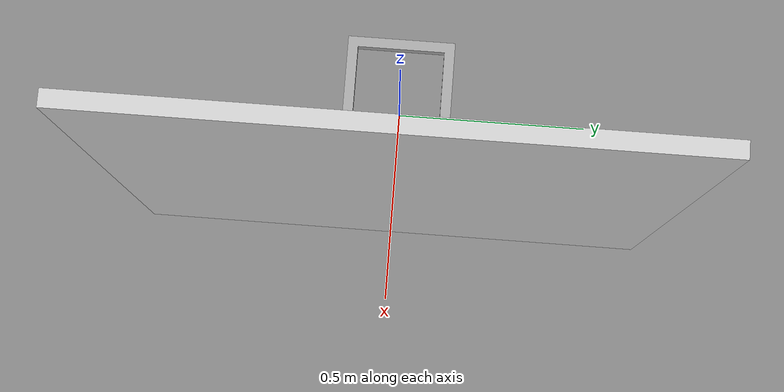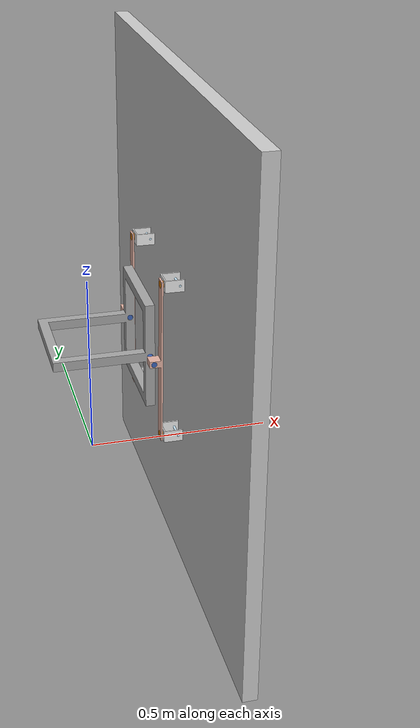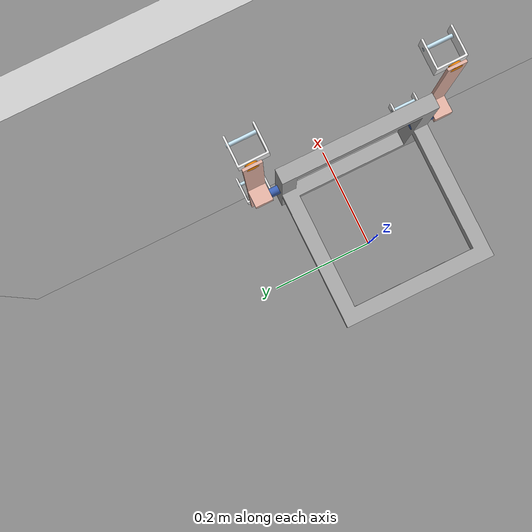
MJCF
<!-- Generated using onshape-to-robot -->
<!-- Onshape https://cad.onshape.com/documents/9ec6f6fa5188c97806daaf60/w/4647d1c2d6e016d5df7a21e8/e/d607b3d6cd170bccde210c27 -->
<mujoco model="sally_mjcf">
  <!-- ======== ADDED BLOCK A: SIM SETTINGS ======== -->
  <compiler angle="radian" meshdir="assets" autolimits="true"/>
  <option integrator="implicit" gravity="0 0 -9.81" cone="elliptic"
          impratio="10" noslip_iterations="15"/>

  <default>
    <geom condim="6" contype="1" conaffinity="1"/>
  </default>
  <!-- ======== END ADDED BLOCK A ======== -->

  <compiler angle="radian" meshdir="assets" autolimits="true"/>
  <default>
  </default>
  <worldbody>
      <!-- ======== ADDED BLOCK B: ENVIRONMENT OBJECTS ======== -->

    <!-- Vertical magnetic wall -->
    <body name="magnetic_wall" pos="0.25 0 0.35">
      <geom name="wall_geom" type="box" size="0.02 0.7 0.7"
            rgba="0.8 0.8 0.8 1"
            friction="0.95 0.1 0.1"
            contype="1" conaffinity="1"/>
    </body>

    <!-- Lighting -->
    <light pos="0 0 2" dir="0 0 -1" directional="true"
           diffuse="0.8 0.8 0.8"/>

    <!-- ======== END ADDED BLOCK B ======== -->

    <!-- Link frame -->
    <body name="frame" pos="0.035 0 0.35" quat="0 -0.7071 0 0.7071">

      <freejoint/>
      <!-- Part frame -->
      <geom mass="1.418814" type="mesh"  pos="0.0180739 0.00440379 -0.0885384" quat="6.64008e-06 -7.24299e-06 1 -1.68313e-05" mesh="frame" material="frame_material"/>
      <!-- Link frame_linkage -->
      <body name="frame_linkage" pos="0.0180761 -0.139947 -0.101144" quat="0.707094 -0.707118 -0.00101616 -0.00100588">
        <!-- Joint from frame to frame_linkage -->
        <joint axis="0 0 1" name="right_hinge" type="hinge" stiffness="10"/>

        <!-- Part frame_linkage -->

        <geom mass="0.07" type="mesh"  pos="-3.46945e-18 0 0.0365" quat="0.707107 0.707107 0 1.5761e-19" mesh="frame_linkage" material="frame_linkage_material"/>
        <!-- Part rocker -->

        <geom mass="0.3" type="mesh"  pos="-1.38778e-17 0.02276 -0.020625" quat="0.5 0.5 0.5 -0.5" mesh="rocker" material="rocker_material"/>
        <!-- Link rocker_linkage -->
        <body name="rocker_linkage" pos="-0.2166 0.018 -0.020625" quat="0.5 -0.5 0.5 0.5">
          <!-- Joint from frame_linkage to rocker_linkage -->
          <joint axis="0 0 1" name="BR_pivot" type="hinge"/>

          <!-- Part wheel_holder -->

          <geom mass="0.15" type="mesh"  pos="-0.00559823 0.000140783 0.05862" quat="3.31439e-16 0.698162 -0.71594 -6.15131e-17" mesh="wheel_holder" material="wheel_holder_material"/>
          <!-- Part rocker_linkage -->

          <geom mass="0.07" type="mesh"  pos="-2.77556e-17 5.55112e-17 0.011" quat="9.09876e-17 -0.698162 0.71594 5.21112e-16" mesh="rocker_linkage" material="rocker_linkage_material"/>
          <!-- Link wheel_linkage -->
          <body name="wheel_linkage" pos="-0.0309912 0.000739345 0.04662" quat="0.184652 0.677713 -0.201753 -0.682571">
              <joint axis="0 0 1" name="BR_wheel"/>

              <!-- linkage mesh -->
              <geom mass="0.08" type="mesh"
                    pos="0 0 0"
                    quat="0.707107 0.707107 0 -4.01208e-18"
                    mesh="wheel_linkage"
                    material="wheel_linkage_material"/>
          </body>

        </body>
        <!-- Link rocker_linkage_2 -->
        <body name="rocker_linkage_2" pos="0.2166 0.018 -0.020625" quat="0.5 -0.5 0.5 0.5">
          <!-- Joint from frame_linkage to rocker_linkage_2 -->
          <joint axis="0 0 1" name="FR_pivot" type="hinge"/>

          <!-- Part rocker_linkage_2 -->

          <geom mass="0.07" type="mesh"  pos="2.77556e-17 0 0.011" quat="2.86822e-16 -0.693382 0.72057 1.85896e-16" mesh="rocker_linkage" material="rocker_linkage_material"/>
          <!-- Part wheel_holder_2 -->

          <geom mass="0.15" type="mesh"  pos="-0.00559586 0.000215279 0.05862" quat="2.86822e-16 -0.693382 0.72057 1.85896e-16" mesh="wheel_holder" material="wheel_holder_material"/>
          <!-- Link wheel_linkage_2 -->
          <body name="wheel_linkage_2" pos="-0.0309786 0.00115175 0.04662" quat="0.333211 0.610404 -0.356941 -0.623675">
              <joint axis="0 0 1" name="FR_wheel"/>

              <geom mass="0.08" type="mesh"
                    pos="2.77556e-17 0 0"
                    quat="0.707107 0.707107 0 1.2503e-17"
                    mesh="wheel_linkage"
                    material="wheel_linkage_material"/>
          </body>

        </body>
      </body>
      <!-- Link frame_linkage_2 -->
      <body name="frame_linkage_2" pos="0.0180719 0.148853 -0.101153" quat="0.498231 -0.498241 -0.50177 -0.501746">
        <!-- Joint from frame to frame_linkage_2 -->
        <joint axis="0 0 1" name="left_hinge" type="hinge" stiffness="10"/>

        <!-- Part frame_linkage_2 -->

        <geom mass="0.07" type="mesh"  pos="1.38778e-17 0 0.0365" quat="0.707107 0.707107 0 -4.24203e-19" mesh="frame_linkage" material="frame_linkage_material"/>
        <!-- Part rocker_2 -->

        <geom mass="0.3" type="mesh"  pos="-0.02276 -1.04083e-17 0.020625" quat="0.707107 1.4179e-17 0.707107 -2.23058e-16" mesh="rocker" material="rocker_material"/>
        <!-- Link rocker_linkage_3 -->
        <body name="rocker_linkage_3" pos="-0.018 -0.2166 0.020625" quat="1.31812e-17 -0.707107 3.33067e-16 0.707107">
          <!-- Joint from frame_linkage_2 to rocker_linkage_3 -->
          <joint axis="0 0 1" name="BL_pivot" type="hinge"/>

          <!-- Part rocker_linkage_3 -->

          <geom mass="0.07" type="mesh"  pos="0 0 0.011" quat="1.07501e-18 -0.707107 0.707107 -2.09885e-17" mesh="rocker_linkage" material="rocker_linkage_material"/>
          <!-- Part wheel_holder_3 -->

          <geom mass="0.15" type="mesh"  pos="0.0056 0 0.05862" quat="1.17978e-18 -0.707107 -0.707107 2.0055e-17" mesh="wheel_holder" material="wheel_holder_material"/>
          <!-- Link wheel_linkage_3 -->
          <body name="wheel_linkage_3" pos="0.031 4e-05 0.04662" quat="0.505916 -0.494014 0.505916 -0.494014">
              <joint axis="0 0 1" name="BL_wheel"/>

              <geom mass="0.08" type="mesh"
                    pos="2.77556e-17 -2.77556e-17 -0.052"
                    quat="0.707107 -0.707107 0 -2.35867e-18"
                    mesh="wheel_linkage"
                    material="wheel_linkage_material"/>
          </body>

        </body>
        <!-- Link rocker_linkage_4 -->
        <body name="rocker_linkage_4" pos="-0.018 0.2166 0.020625" quat="1.31812e-17 -0.707107 3.33067e-16 0.707107">
          <!-- Joint from frame_linkage_2 to rocker_linkage_4 -->
          <joint axis="0 0 1" name="FL_pivot" type="hinge"/>

          <!-- Part rocker_linkage_4 -->

          <geom mass="0.07" type="mesh"  pos="-1.38778e-16 -2.77556e-17 0.011" quat="3.71573e-18 -0.703399 0.710795 -1.77453e-17" mesh="rocker_linkage" material="rocker_linkage_material"/>
          <!-- Part wheel_holder_4 -->

          <geom mass="0.15" type="mesh"  pos="0.00559969 -5.85778e-05 0.05862" quat="1.10843e-18 -0.710795 -0.703399 1.52529e-17" mesh="wheel_holder" material="wheel_holder_material"/>
          <!-- Link wheel_linkage_4 -->
          <body name="wheel_linkage_4" pos="0.0309987 -0.000284272 0.04662" quat="0.491361 0.503325 -0.496653 -0.508493">
              <joint axis="0 0 1" name="FL_wheel"/>

              <geom mass="0.08" type="mesh"
                    pos="0 0 0.052"
                    quat="0.707107 0.707107 -0 -1.17884e-18"
                    mesh="wheel_linkage"
                    material="wheel_linkage_material"/>
          </body>

        </body>
      </body>
    </body>
  </worldbody>
  <asset>
    <mesh file="frame_linkage.stl"/>
    <mesh file="rocker.stl"/>
    <mesh file="frame.stl"/>
    <mesh file="wheel.stl"/>
    <mesh file="rocker_linkage.stl"/>
    <mesh file="wheel_holder.stl"/>
    <mesh file="wheel_linkage.stl"/>
    <material name="frame_material" rgba="0.647059 0.647059 0.647059 1"/>
    <material name="frame_linkage_material" rgba="0.231373 0.380392 0.705882 1"/>
    <material name="rocker_material" rgba="0.890196 0.698039 0.639216 1"/>
    <material name="wheel_holder_material" rgba="0.917647 0.917647 0.917647 1"/>
    <material name="rocker_linkage_material" rgba="0.972549 0.529412 0.00392157 1"/>
    <material name="wheel_linkage_material" rgba="0.768627 0.886275 0.952941 1"/>
    <material name="wheel_material" rgba="0.498039 0.498039 0.498039 1"/>
  </asset>
  <actuator>
      <position name="BR_pivot" joint="BR_pivot" kp="20" kv="10" />
      <position name="FR_pivot" joint="FR_pivot" kp="20" kv="10" />
      <position name="BL_pivot" joint="BL_pivot" kp="20" kv="10" />
      <position name="FL_pivot" joint="FL_pivot" kp="20" kv="10" />

      <!-- Direct torque control -->

      <!-- Position control for wheels (control input = target angle in radians) -->
      <position name="BR_wheel_motor" joint="BR_wheel" kp="10" kv="1" ctrlrange="-100 100" />
      <position name="FR_wheel_motor" joint="FR_wheel" kp="10" kv="1" ctrlrange="-100 100" />
      <position name="BL_wheel_motor" joint="BL_wheel" kp="10" kv="1" ctrlrange="-100 100" />
      <position name="FL_wheel_motor" joint="FL_wheel" kp="10" kv="1" ctrlrange="-100 100" />
    </actuator>
</mujoco>
